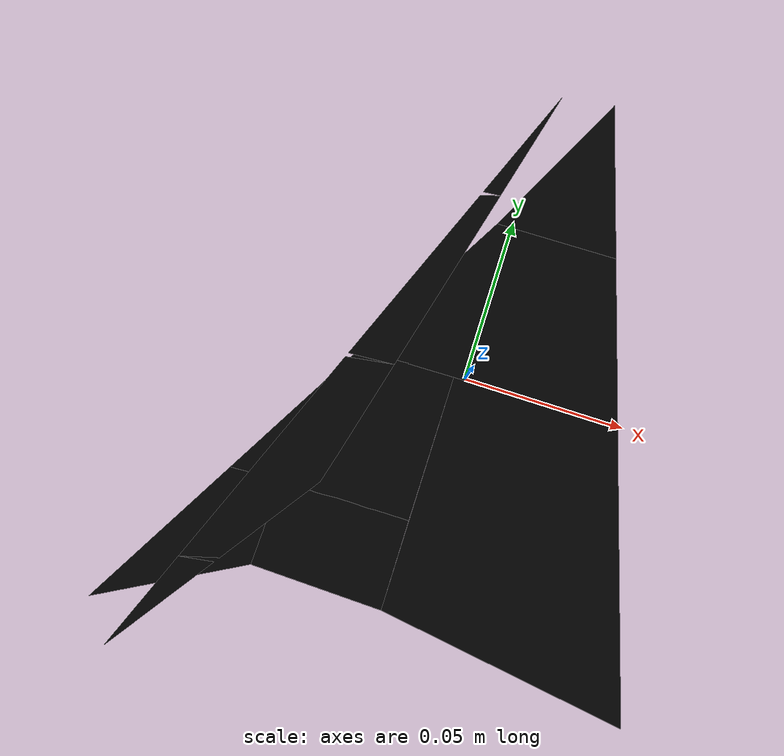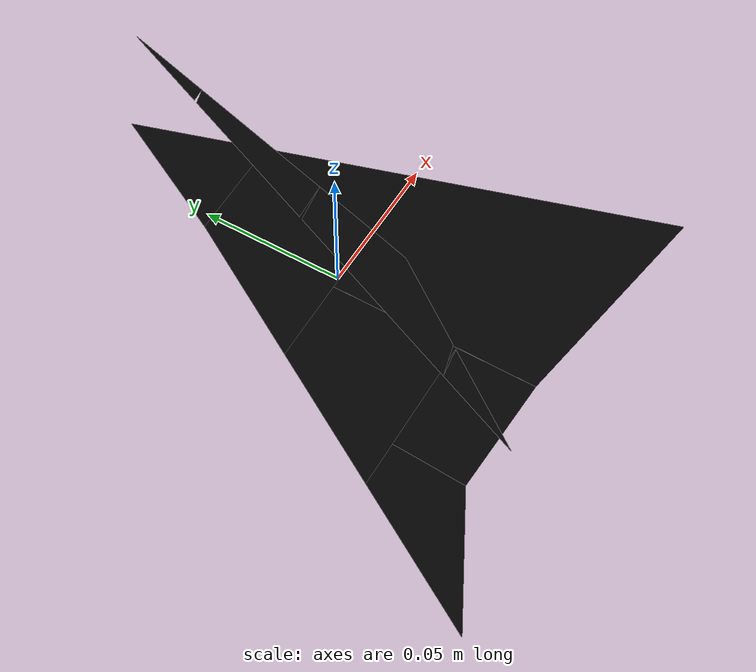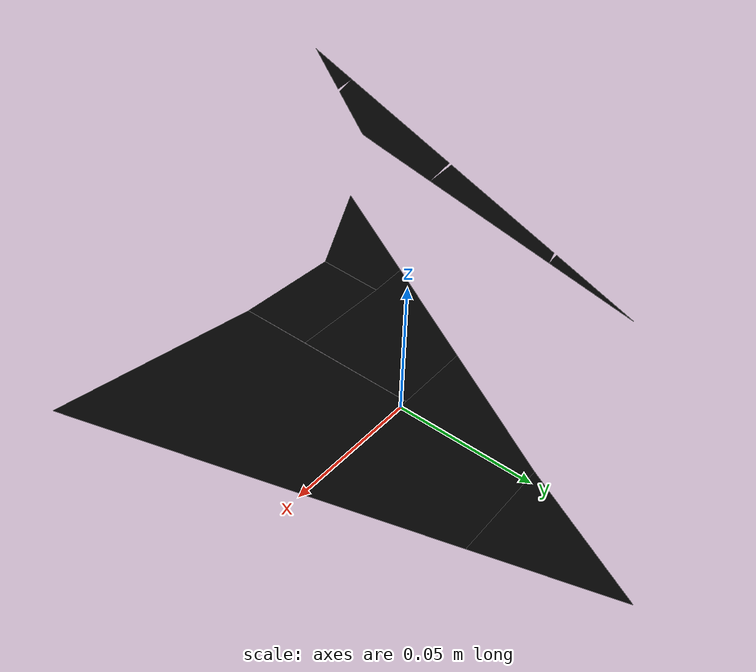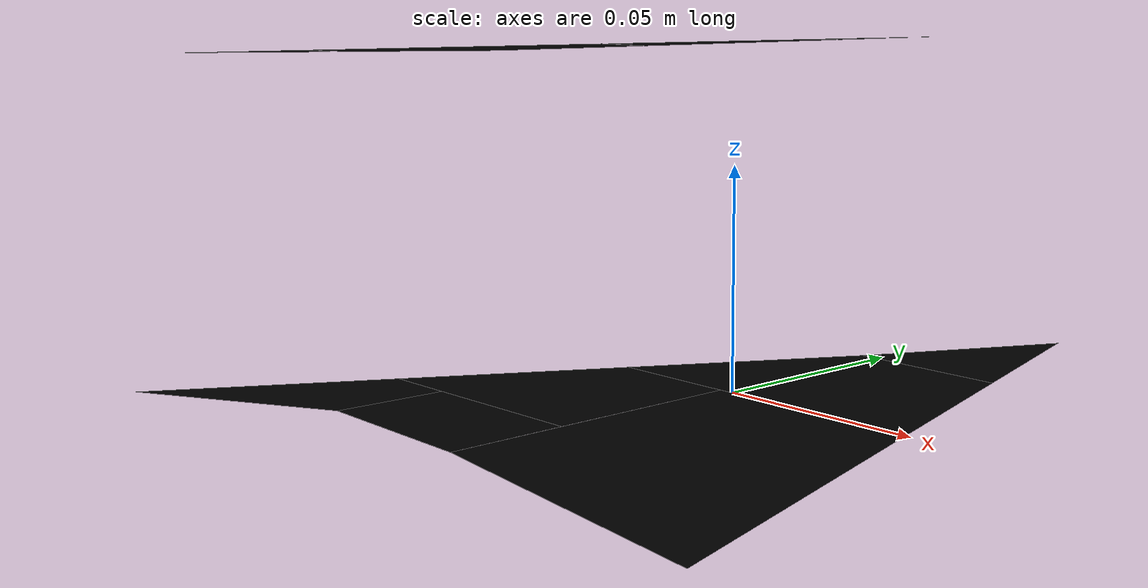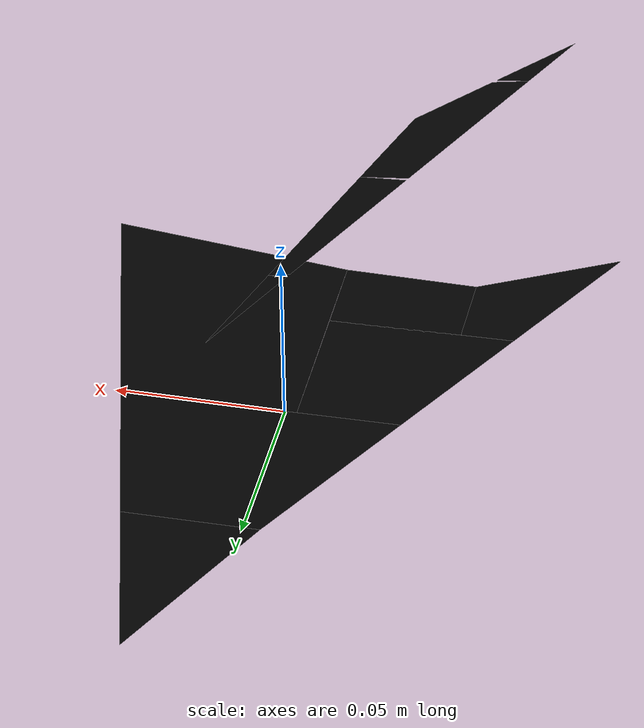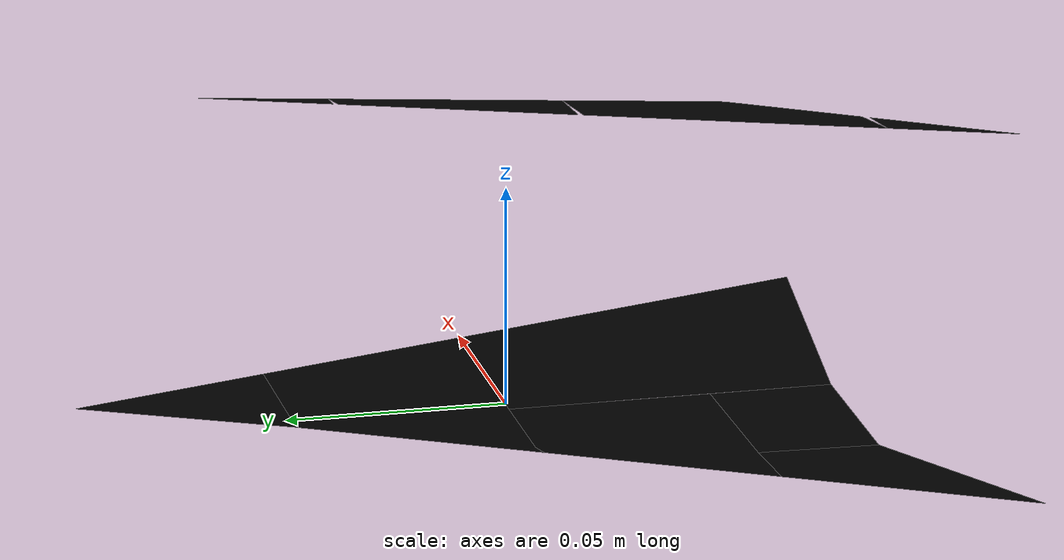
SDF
<?xml version='1.0' encoding='UTF-8'?>
<sdf version="1.7">
  <model name="letter_a_coarse">
    <link name="body">
      <inertial>
        <pose>0 0 0 0 0 0</pose>
        <mass>nan</mass>
        <inertia>
          <ixx>inf</ixx>
          <iyy>inf</iyy>
          <izz>nan</izz>
          <ixy>nan</ixy>
          <ixz>inf</ixz>
          <iyz>nan</iyz>
        </inertia>
      </inertial>
      <visual name="convex_0">
        <pose>0 0 0 0 0 0</pose>
        <geometry>
          <mesh>
            <uri>letter_a_coarse_convex_0.obj</uri>
          </mesh>
        </geometry>
        <material>
          <diffuse>0 0 0 1</diffuse>
        </material>
      </visual>
      <collision name="convex_0_volume">
        <pose>0 0 0 0 0 0</pose>
        <geometry>
          <mesh>
            <uri>letter_a_coarse_convex_0.obj</uri>
          </mesh>
        </geometry>
        <drake:proximity_properties xmlns:drake="uri:drake">
          <drake:compliant_hydroelastic/>
          <drake:hydroelastic_modulus> 3.0e7 </drake:hydroelastic_modulus>
          <drake:mesh_resolution_hint> 0.18 </drake:mesh_resolution_hint>
          <drake:hunt_crossley_dissipation>10</drake:hunt_crossley_dissipation>
          <drake:mu_dynamic>0.3</drake:mu_dynamic>
        </drake:proximity_properties>
      </collision>
      <visual name="convex_1">
        <pose>0 0 0 0 0 0</pose>
        <geometry>
          <mesh>
            <uri>letter_a_coarse_convex_1.obj</uri>
          </mesh>
        </geometry>
        <material>
          <diffuse>0 0 0 1</diffuse>
        </material>
      </visual>
      <collision name="convex_1_volume">
        <pose>0 0 0 0 0 0</pose>
        <geometry>
          <mesh>
            <uri>letter_a_coarse_convex_1.obj</uri>
          </mesh>
        </geometry>
        <drake:proximity_properties xmlns:drake="uri:drake">
          <drake:compliant_hydroelastic/>
          <drake:hydroelastic_modulus> 3.0e7 </drake:hydroelastic_modulus>
          <drake:mesh_resolution_hint> 0.18 </drake:mesh_resolution_hint>
          <drake:hunt_crossley_dissipation>10</drake:hunt_crossley_dissipation>
          <drake:mu_dynamic>0.3</drake:mu_dynamic>
        </drake:proximity_properties>
      </collision>
      <visual name="convex_2">
        <pose>0 0 0 0 0 0</pose>
        <geometry>
          <mesh>
            <uri>letter_a_coarse_convex_2.obj</uri>
          </mesh>
        </geometry>
        <material>
          <diffuse>0 0 0 1</diffuse>
        </material>
      </visual>
      <collision name="convex_2_volume">
        <pose>0 0 0 0 0 0</pose>
        <geometry>
          <mesh>
            <uri>letter_a_coarse_convex_2.obj</uri>
          </mesh>
        </geometry>
        <drake:proximity_properties xmlns:drake="uri:drake">
          <drake:compliant_hydroelastic/>
          <drake:hydroelastic_modulus> 3.0e7 </drake:hydroelastic_modulus>
          <drake:mesh_resolution_hint> 0.18 </drake:mesh_resolution_hint>
          <drake:hunt_crossley_dissipation>10</drake:hunt_crossley_dissipation>
          <drake:mu_dynamic>0.3</drake:mu_dynamic>
        </drake:proximity_properties>
      </collision>
      <visual name="convex_3">
        <pose>0 0 0 0 0 0</pose>
        <geometry>
          <mesh>
            <uri>letter_a_coarse_convex_3.obj</uri>
          </mesh>
        </geometry>
        <material>
          <diffuse>0 0 0 1</diffuse>
        </material>
      </visual>
      <collision name="convex_3_volume">
        <pose>0 0 0 0 0 0</pose>
        <geometry>
          <mesh>
            <uri>letter_a_coarse_convex_3.obj</uri>
          </mesh>
        </geometry>
        <drake:proximity_properties xmlns:drake="uri:drake">
          <drake:compliant_hydroelastic/>
          <drake:hydroelastic_modulus> 3.0e7 </drake:hydroelastic_modulus>
          <drake:mesh_resolution_hint> 0.18 </drake:mesh_resolution_hint>
          <drake:hunt_crossley_dissipation>10</drake:hunt_crossley_dissipation>
          <drake:mu_dynamic>0.3</drake:mu_dynamic>
        </drake:proximity_properties>
      </collision>
      <visual name="convex_4">
        <pose>0 0 0 0 0 0</pose>
        <geometry>
          <mesh>
            <uri>letter_a_coarse_convex_4.obj</uri>
          </mesh>
        </geometry>
        <material>
          <diffuse>0 0 0 1</diffuse>
        </material>
      </visual>
      <collision name="convex_4_volume">
        <pose>0 0 0 0 0 0</pose>
        <geometry>
          <mesh>
            <uri>letter_a_coarse_convex_4.obj</uri>
          </mesh>
        </geometry>
        <drake:proximity_properties xmlns:drake="uri:drake">
          <drake:compliant_hydroelastic/>
          <drake:hydroelastic_modulus> 3.0e7 </drake:hydroelastic_modulus>
          <drake:mesh_resolution_hint> 0.18 </drake:mesh_resolution_hint>
          <drake:hunt_crossley_dissipation>10</drake:hunt_crossley_dissipation>
          <drake:mu_dynamic>0.3</drake:mu_dynamic>
        </drake:proximity_properties>
      </collision>
      <visual name="convex_5">
        <pose>0 0 0 0 0 0</pose>
        <geometry>
          <mesh>
            <uri>letter_a_coarse_convex_5.obj</uri>
          </mesh>
        </geometry>
        <material>
          <diffuse>0 0 0 1</diffuse>
        </material>
      </visual>
      <collision name="convex_5_volume">
        <pose>0 0 0 0 0 0</pose>
        <geometry>
          <mesh>
            <uri>letter_a_coarse_convex_5.obj</uri>
          </mesh>
        </geometry>
        <drake:proximity_properties xmlns:drake="uri:drake">
          <drake:compliant_hydroelastic/>
          <drake:hydroelastic_modulus> 3.0e7 </drake:hydroelastic_modulus>
          <drake:mesh_resolution_hint> 0.18 </drake:mesh_resolution_hint>
          <drake:hunt_crossley_dissipation>10</drake:hunt_crossley_dissipation>
          <drake:mu_dynamic>0.3</drake:mu_dynamic>
        </drake:proximity_properties>
      </collision>
      <visual name="convex_6">
        <pose>0 0 0 0 0 0</pose>
        <geometry>
          <mesh>
            <uri>letter_a_coarse_convex_6.obj</uri>
          </mesh>
        </geometry>
        <material>
          <diffuse>0 0 0 1</diffuse>
        </material>
      </visual>
      <collision name="convex_6_volume">
        <pose>0 0 0 0 0 0</pose>
        <geometry>
          <mesh>
            <uri>letter_a_coarse_convex_6.obj</uri>
          </mesh>
        </geometry>
        <drake:proximity_properties xmlns:drake="uri:drake">
          <drake:compliant_hydroelastic/>
          <drake:hydroelastic_modulus> 3.0e7 </drake:hydroelastic_modulus>
          <drake:mesh_resolution_hint> 0.18 </drake:mesh_resolution_hint>
          <drake:hunt_crossley_dissipation>10</drake:hunt_crossley_dissipation>
          <drake:mu_dynamic>0.3</drake:mu_dynamic>
        </drake:proximity_properties>
      </collision>
      <visual name="convex_7">
        <pose>0 0 0 0 0 0</pose>
        <geometry>
          <mesh>
            <uri>letter_a_coarse_convex_7.obj</uri>
          </mesh>
        </geometry>
        <material>
          <diffuse>0 0 0 1</diffuse>
        </material>
      </visual>
      <collision name="convex_7_volume">
        <pose>0 0 0 0 0 0</pose>
        <geometry>
          <mesh>
            <uri>letter_a_coarse_convex_7.obj</uri>
          </mesh>
        </geometry>
        <drake:proximity_properties xmlns:drake="uri:drake">
          <drake:compliant_hydroelastic/>
          <drake:hydroelastic_modulus> 3.0e7 </drake:hydroelastic_modulus>
          <drake:mesh_resolution_hint> 0.18 </drake:mesh_resolution_hint>
          <drake:hunt_crossley_dissipation>10</drake:hunt_crossley_dissipation>
          <drake:mu_dynamic>0.3</drake:mu_dynamic>
        </drake:proximity_properties>
      </collision>
      <visual name="convex_8">
        <pose>0 0 0 0 0 0</pose>
        <geometry>
          <mesh>
            <uri>letter_a_coarse_convex_8.obj</uri>
          </mesh>
        </geometry>
        <material>
          <diffuse>0 0 0 1</diffuse>
        </material>
      </visual>
      <collision name="convex_8_volume">
        <pose>0 0 0 0 0 0</pose>
        <geometry>
          <mesh>
            <uri>letter_a_coarse_convex_8.obj</uri>
          </mesh>
        </geometry>
        <drake:proximity_properties xmlns:drake="uri:drake">
          <drake:compliant_hydroelastic/>
          <drake:hydroelastic_modulus> 3.0e7 </drake:hydroelastic_modulus>
          <drake:mesh_resolution_hint> 0.18 </drake:mesh_resolution_hint>
          <drake:hunt_crossley_dissipation>10</drake:hunt_crossley_dissipation>
          <drake:mu_dynamic>0.3</drake:mu_dynamic>
        </drake:proximity_properties>
      </collision>
      <visual name="convex_9">
        <pose>0 0 0 0 0 0</pose>
        <geometry>
          <mesh>
            <uri>letter_a_coarse_convex_9.obj</uri>
          </mesh>
        </geometry>
        <material>
          <diffuse>0 0 0 1</diffuse>
        </material>
      </visual>
      <collision name="convex_9_volume">
        <pose>0 0 0 0 0 0</pose>
        <geometry>
          <mesh>
            <uri>letter_a_coarse_convex_9.obj</uri>
          </mesh>
        </geometry>
        <drake:proximity_properties xmlns:drake="uri:drake">
          <drake:compliant_hydroelastic/>
          <drake:hydroelastic_modulus> 3.0e7 </drake:hydroelastic_modulus>
          <drake:mesh_resolution_hint> 0.18 </drake:mesh_resolution_hint>
          <drake:hunt_crossley_dissipation>10</drake:hunt_crossley_dissipation>
          <drake:mu_dynamic>0.3</drake:mu_dynamic>
        </drake:proximity_properties>
      </collision>
    </link>
  </model>
</sdf>
